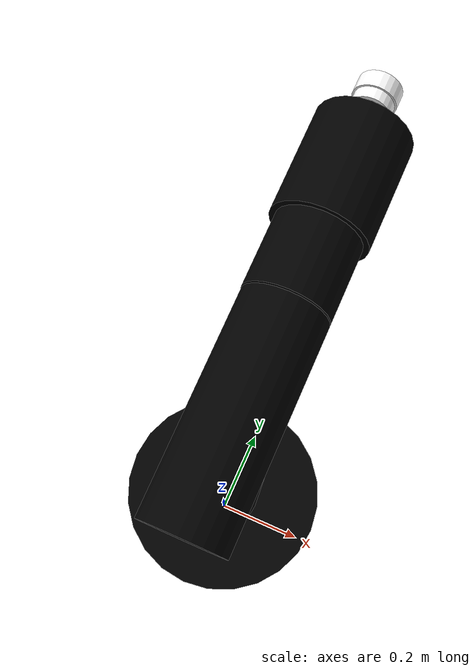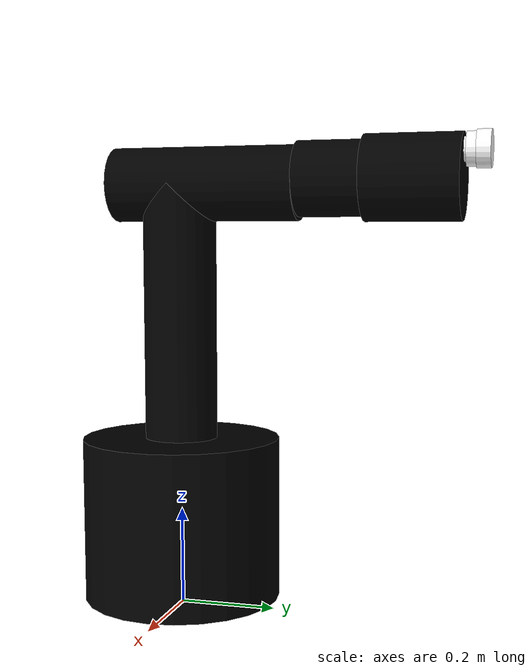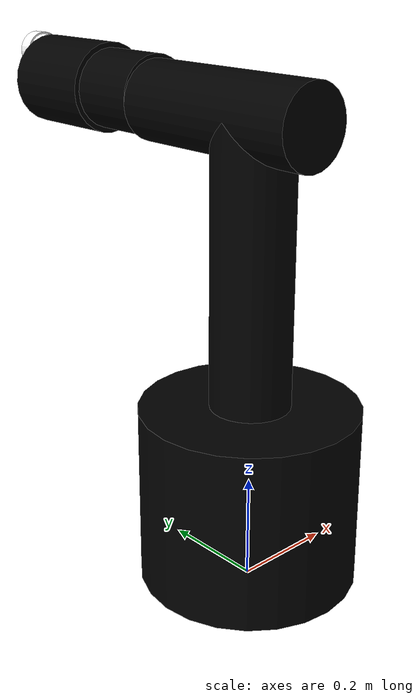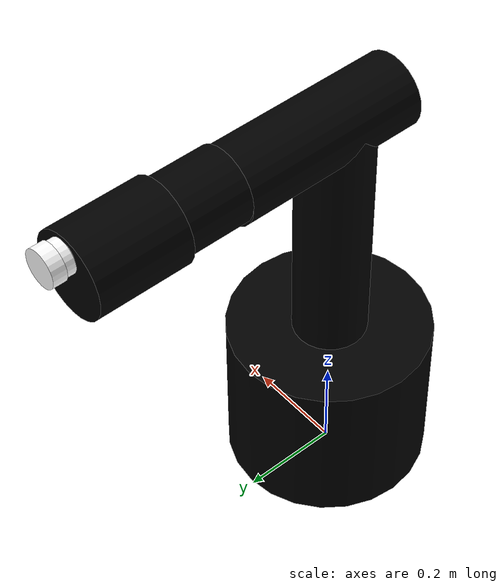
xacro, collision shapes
<?xml version="1.0"?>
<robot name="grips" xmlns:xacro="http://www.ros.org/wiki/xacro">

  <!-- Import common macros-->
  <xacro:include filename="$(find grips_description)/urdf/common.xacro" />
  <!-- Import materials for rviz-->
  <xacro:include filename="$(find grips_description)/urdf/materials.xacro" />
  <!-- Import robot without gripper -->
  <xacro:include filename="$(find grips_description)/urdf/serial_arm.xacro" />
  <!-- Import ft sensor -->
  <xacro:include filename="$(find grips_description)/urdf/ftsensor.xacro" />

  <!-- Create the grips robot -->
  <link name="world" />
  <serial_arm parent="world"/>

  <!-- Add the ft_sensor -->
  <ftsensor parent="end_effector"/>

  <!-- ros_control plugin  -->
  <gazebo>
    <plugin name="ros_control" filename="libgazebo_ros_control.so"/>
  </gazebo>

</robot>

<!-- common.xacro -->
<robot xmlns:xacro="http://www.ros.org/wiki/xacro">
  <!-- Auxiliar Values -->
  <property name="pi" value="3.1415926535897931" />
  <property name="gripper_effort" value="200" />
  <property name="gripper_velocity" value="15" />
  <property name="max_effort" value="400" />
  <property name="max_velocity" value="5" />

  <!-- Macros -->
  <macro name="cylinder_collision" params="radius length">
    <collision>
      <origin xyz="0 0 ${length/2}" rpy="0 0 0"/>
      <geometry>
        <cylinder radius="${radius}" length="${length}"/>
      </geometry>
    </collision>
  </macro>
  <macro name="cylinder_inertia" params="mass radius length">
    <inertial>
      <origin xyz="0 0 ${length/2}" rpy="0 0 0" />
      <mass value="${mass}" />
      <inertia  ixx="${mass*radius^2 / 4  + mass*length^2 / 12}" ixy="0.0"  ixz="0.0"
                iyy="${mass*radius^2 / 4  + mass*length^2 / 12}" iyz="0.0"
                izz="${mass*radius^2 / 2}" />
    </inertial>
  </macro>
  <!-- Link Macro -->
  <macro name="create_link" params="name color mesh *collision *inertia">
    <link name="${name}">
      <visual>
        <geometry>
          <mesh filename="${mesh}" />
        </geometry>
        <material name="${color}" />
      </visual>
      <xacro:insert_block name="collision" />
      <xacro:insert_block name="inertia" />
    </link>
  </macro>
  <!-- A smaller dummy link makes the model to explode in Gazebo -->
  <macro name="dummy_link" params="name">
    <link name="${name}">
      <visual>
        <geometry>
          <sphere radius="0.01"/>
        </geometry>
        <material name="blue" />
      </visual>
      <collision>
        <geometry>
          <sphere radius="0.01"/>
        </geometry>
      </collision>
      <cylinder_inertia radius="0.01" length="0.02" mass="0.05"/>
    </link>
  </macro>
  <!-- Transmission Macro -->
  <macro name="simple_transmission" params="joint">
    <transmission name="${joint}_tran" type="transmission_interface/SimpleTransmission">
      <type>transmission_interface/SimpleTransmission</type>
      <joint name="${joint}"/>
      <actuator name="${joint}_motor">
        <hardwareInterface>EffortJointInterface</hardwareInterface>
        <mechanicalReduction>1</mechanicalReduction>
      </actuator>
      <mechanicalReduction>1</mechanicalReduction>
    </transmission>
  </macro>
</robot>

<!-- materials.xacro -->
<robot>

  <material name="black">
    <color rgba="0.0 0.0 0.0 1.0" />
  </material>

  <material name="blue">
    <color rgba="0.0 0.0 0.8 1.0" />
  </material>

  <material name="green">
    <color rgba="0.0 0.8 0.0 1.0" />
  </material>

  <material name="grey">
    <color rgba="0.2 0.2 0.2 1.0" />
  </material>

  <material name="orange">
    <color rgba="${255/255} ${108/255} ${10/255} 1.0" />
  </material>

  <material name="brown">
    <color rgba="${222/255} ${207/255} ${195/255} 1.0" />
  </material>

  <material name="red">
    <color rgba="0.8 0.0 0.0 1.0" />
  </material>

  <material name="white">
    <color rgba="1.0 1.0 1.0 1.0" />
  </material>

  <material name="metal_seamed">
    <color rgba="0.4627450980392157 0.4666666666666667 0.4509803921568628 1.0" />
  </material>

</robot>

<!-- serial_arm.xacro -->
<robot xmlns:xacro="http://www.ros.org/wiki/xacro">
  <!-- Dimensions -->
  <property name="base_radius" value="0.125" />
  <property name="base_length" value="15.24e-3" />
  <property name="manifold_radius" value="0.205" />
  <property name="manifold_length" value="0.33812" />
  <property name="upper_arm_radius" value="0.075" />
  <property name="upper_arm_length" value="0.52167" />
  <property name="forearm_radius" value="0.075" />
  <property name="forearm_length" value="0.385078" />
  <property name="pitch_radius" value="0.075" />
  <property name="pitch_length" value="0.133223" />
  <property name="yaw_radius" value="0.085" />
  <property name="yaw_length" value="0.190892" />
  <!-- Link Masses -->
  <property name="base_mass" value="1.208" />
  <property name="manifold_mass" value="41.111" />
  <property name="upper_arm_mass" value="3.592" />
  <property name="elbow_pivot_mass" value="0.72" />
  <property name="coupling_mass" value="0.446" />
  <property name="forearm_mass" value="4.935" />
  <property name="pitch_mass" value="0.679" />
  <property name="yaw_mass" value="4.689" />
  <property name="camera_mass" value="0.869" />
  <!-- Meshes -->
  <property name="base_mesh" value="package://grips_description/meshes/visual/base.dae" />
  <property name="manifold_mesh" value="package://grips_description/meshes/visual/manifold.dae" />
  <property name="upper_arm_mesh" value="package://grips_description/meshes/visual/upper_arm.dae" />
  <property name="elbow_pivot_mesh" value="package://grips_description/meshes/visual/elbow_pivot.dae" />
  <property name="coupling_mesh" value="package://grips_description/meshes/visual/coupling.dae" />
  <property name="forearm_mesh" value="package://grips_description/meshes/visual/forearm.dae" />
  <property name="pitch_mesh" value="package://grips_description/meshes/visual/pitch.dae" />
  <property name="yaw_mesh" value="package://grips_description/meshes/visual/yaw.dae" />
  <property name="camera_mesh" value="package://grips_description/meshes/visual/camera.dae" />
  <!-- Joints Dynamics -->
  <property name="SA_damping" value="5" />
  <property name="SE_damping" value="5" />
  <property name="linkage_damping" value="0.5" />
  <property name="linkage_friction" value="0.5" />
  <property name="WP_damping" value="5" />
  <property name="WY_damping" value="5" />
  <property name="WR_damping" value="0.5" />

  <macro name="serial_arm" params="parent">
    <create_link name="base_link" color="black" mesh="${base_mesh}" >
      <cylinder_collision radius="${base_radius}" length="${base_length}" />
      <cylinder_inertia radius="${base_radius}" length="${base_length}" mass="${base_mass}"/>
    </create_link>

    <create_link name="manifold" color="black" mesh="${manifold_mesh}" >
      <cylinder_collision radius="${manifold_radius}" length="${manifold_length}" />
      <cylinder_inertia radius="${manifold_radius}" length="${manifold_length}" mass="${manifold_mass}"/>
    </create_link>

    <create_link name="upper_arm" color="black" mesh="${upper_arm_mesh}" >
      <cylinder_collision radius="${upper_arm_radius}" length="${upper_arm_length}" />
      <cylinder_inertia radius="${upper_arm_radius}" length="${upper_arm_length}" mass="${upper_arm_mass}"/>
    </create_link>

    <create_link name="forearm" color="black" mesh="${forearm_mesh}" >
      <collision>
        <origin xyz="0 ${forearm_length/2 - 0.1234} 0" rpy="${pi/2} 0 0"/>
        <geometry>
          <cylinder radius="${forearm_radius}" length="${forearm_length}"/>
        </geometry>
      </collision>
      <inertial>
        <origin xyz="0 ${forearm_length/2 - 0.1234} 0" rpy="0 0 0"/>
        <mass value="${forearm_mass}" />
        <inertia  ixx="${forearm_mass*forearm_radius^2 / 4  + forearm_mass*forearm_length^2 / 12}" ixy="0.0"  ixz="0.0"
                  iyy="${forearm_mass*forearm_radius^2 / 2}" iyz="0.0"
                  izz="${forearm_mass*forearm_radius^2 / 4  + forearm_mass*forearm_length^2 / 12}" />
      </inertial>
    </create_link>
    <create_link name="pitch" color="black" mesh="${pitch_mesh}" >
      <collision>
        <origin xyz="0 ${pitch_length/2} 0" rpy="${pi/2} 0 0"/>
        <geometry>
          <cylinder radius="${pitch_radius}" length="${pitch_length}"/>
        </geometry>
      </collision>
      <inertial>
        <origin xyz="0 ${pitch_length/2} 0" rpy="0 0 0"/>
        <mass value="${pitch_mass}" />
        <inertia  ixx="${pitch_mass*pitch_radius^2 / 4  + pitch_mass*pitch_length^2 / 12}" ixy="0.0"  ixz="0.0"
                  iyy="${pitch_mass*pitch_radius^2 / 2}" iyz="0.0"
                  izz="${pitch_mass*pitch_radius^2 / 4  + pitch_mass*pitch_length^2 / 12}" />
      </inertial>
    </create_link>
    <create_link name="yaw" color="black" mesh="${yaw_mesh}" >
      <collision>
        <origin xyz="0 ${yaw_length/2} 0" rpy="${pi/2} 0 0"/>
        <geometry>
          <cylinder radius="${yaw_radius}" length="${yaw_length}"/>
        </geometry>
      </collision>
      <inertial>
        <origin xyz="0 ${yaw_length/2} 0" rpy="0 0 0"/>
        <mass value="${yaw_mass}" />
        <inertia  ixx="${yaw_mass*yaw_radius^2 / 4  + yaw_mass*yaw_length^2 / 12}" ixy="0.0"  ixz="0.0"
                  iyy="${yaw_mass*yaw_radius^2 / 2}" iyz="0.0"
                  izz="${yaw_mass*yaw_radius^2 / 4  + yaw_mass*yaw_length^2 / 12}" />
      </inertial>
    </create_link>

    <!-- This dummy link is needed for coupling hands to the robot -->
    <dummy_link name="end_effector" />

    <!-- Joints -->
    <joint name="anchor" type="fixed">
      <origin xyz="0 0 0.001" rpy="0 0 0" />
      <parent link="${parent}" />
      <child link="base_link" />
    </joint>
    <joint name="SA" type="revolute">
      <child link="manifold" />
      <parent link="base_link" />
      <axis xyz="0 0 1" />
      <origin xyz="0 0 ${base_length}" rpy="0 0 0" />
      <limit lower="${-pi/2}" upper="${pi/2}" effort="${max_effort}" velocity="${80*pi/180}" />
      <dynamics damping="${SA_damping}"/>
    </joint>
    <joint name="SE" type="revolute">
      <child link="upper_arm" />
      <parent link="manifold" />
      <axis xyz="1 0 0" />
      <origin xyz="0 0 ${manifold_length}" rpy="0 0 0" />
      <limit lower="${-pi/2}" upper="${pi/6}" effort="${max_effort}" velocity="${65*pi/180}" />
      <dynamics damping="${SE_damping}" friction="10"/>
    </joint>
    <joint name="linkage_tr" type="revolute">
      <child link="forearm" />
      <parent link="upper_arm" />
      <axis xyz="1 0 0" />
      <origin xyz="0 -9.82e-3 ${upper_arm_length}" rpy="0 0 0" />
      <limit lower="${-40*pi/180}" upper="${70*pi/180}" effort="${max_effort}" velocity="${50*pi/180}" />
      <dynamics damping="10"/>
    </joint>
    <joint name="WP" type="revolute">
      <child link="pitch" />
      <parent link="forearm" />
      <axis xyz="1 0 0" />
      <origin xyz="0 0.26109 7.5e-3" rpy="0 0 0" />
      <limit lower="${-35*pi/180}" upper="${65*pi/180}" effort="${max_effort}" velocity="${100*pi/180}" />
      <dynamics damping="${WP_damping}"/>
    </joint>
    <joint name="WY" type="revolute">
      <child link="yaw" />
      <parent link="pitch" />
      <axis xyz="0 0 1" />
      <origin xyz="0 ${pitch_length} 0" rpy="0 0 0" />
      <limit lower="${-39*pi/180}" upper="${66*pi/180}" effort="${max_effort}" velocity="${115*pi/180}" />
      <dynamics damping="${WY_damping}"/>
    </joint>
    <joint name="WR" type="continuous">
      <child link="end_effector" />
      <parent link="yaw" />
      <axis xyz="0 1 0" />
      <origin xyz="-0.787e-3 ${yaw_length} 0.051331" rpy="0 0 0" />
      <limit lower="${-100*pi/180}" upper="${100*pi/180}" effort="${max_effort}" velocity="${200*pi/180}" />
      <dynamics damping="${WR_damping}"/>
    </joint>

    <!-- Transmissions -->
    <simple_transmission joint="SA" />
    <simple_transmission joint="SE" />
    <simple_transmission joint="linkage_tr" />
    <simple_transmission joint="WP" />
    <simple_transmission joint="WY" />
    <simple_transmission joint="WR" />

    <gazebo reference="base_link">
      <material>Telerobcar/MetalSeamed</material>
      <selfCollide>false</selfCollide>
    </gazebo>
    <gazebo reference="manifold">
      <material>Telerobcar/MetalSeamed</material>
      <selfCollide>false</selfCollide>
    </gazebo>
    <gazebo reference="upper_arm">
      <material>Telerobcar/MetalSeamed</material>
      <selfCollide>false</selfCollide>
    </gazebo>
    <gazebo reference="forearm">
      <material>Telerobcar/MetalSeamed</material>
      <selfCollide>false</selfCollide>
    </gazebo>
    <gazebo reference="pitch">
      <material>Telerobcar/MetalSeamed</material>
      <selfCollide>false</selfCollide>
    </gazebo>
    <gazebo reference="yaw">
      <material>Telerobcar/MetalSeamed</material>
      <selfCollide>false</selfCollide>
    </gazebo>
    <gazebo reference="end_effector">
      <selfCollide>false</selfCollide>
    </gazebo>
  </macro>
</robot>

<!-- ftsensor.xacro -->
<robot xmlns:xacro="http://www.ros.org/wiki/xacro">
  <!-- Meshes -->
  <property name="wrist_coupling_mesh"   value="package://grips_description/meshes/visual/wrist_coupling.dae" />
  <property name="ft_coupling_mesh"   value="package://grips_description/meshes/visual/ft_coupling.dae" />
  <property name="ft_sensor_mesh"        value="package://grips_description/meshes/visual/ft_sensor.dae" />
  <property name="robotiq_coupling_mesh" value="package://grips_description/meshes/visual/robotiq_coupling.dae" />
  <!-- Dimensions -->
  <property name="wrist_coupling_radius" value="23.8e-3" />
  <property name="wrist_coupling_length" value="19e-3" />
  <property name="ft_coupling_radius" value="33.7e-3" />
  <property name="ft_coupling_length" value="19e-3" />
  <property name="ft_sensor_radius" value="37e-3" />
  <property name="ft_sensor_length" value="28e-3" />
  <!-- Links Mass -->
  <property name="wrist_coupling_mass"    value="0.059" />    <!-- Density: 5000 kg/m3 -->
  <property name="ft_coupling_mass"    value="0.1478" />   <!-- Density: 4070 kg/m3 -->
  <property name="ft_sensor_mass"         value="0.2396" />   <!-- Density: 1750 kg/m3 -->

  <property name="robotiq_coupling_mass"  value="0.2304" />   <!-- Density: 4440 kg/m3 -->
  <property name="robotiq_mass"           value="2.438" />

  <macro name="ftsensor" params="parent">
    <!-- Links -->
    <create_link name="wrist_coupling" color="white" mesh="${wrist_coupling_mesh}" >
      <cylinder_collision radius="${wrist_coupling_radius}" length="${wrist_coupling_length}" />
      <cylinder_inertia radius="${wrist_coupling_radius}" length="${wrist_coupling_length}" mass="${wrist_coupling_mass}"/>
    </create_link>

    <link name="ft_coupling">
      <visual>
        <geometry>
          <mesh filename="${ft_coupling_mesh}" />
        </geometry>
        <material name="white" />
      </visual>
      <!-- Align the collision with the mess. It has an offset of 4.7 mm -->
      <collision>
        <origin xyz="0 0 ${4.7e-3 + ft_coupling_length/2}" rpy="0 0 0"/>
        <geometry>
          <cylinder radius="${ft_coupling_radius}" length="${ft_coupling_length}"/>
        </geometry>
      </collision>
      <inertial>
        <origin xyz="0 0 ${4.7e-3 + ft_coupling_length/2}" rpy="0 0 0" />
        <mass value="${ft_coupling_mass}" />
        <inertia  ixx="${ft_coupling_mass*ft_coupling_radius^2 / 4  + ft_coupling_mass*ft_coupling_length^2 / 12}" ixy="0.0"  ixz="0.0"
                  iyy="${ft_coupling_mass*ft_coupling_radius^2 / 4  + ft_coupling_mass*ft_coupling_length^2 / 12}" iyz="0.0"
                  izz="${ft_coupling_mass*ft_coupling_radius^2 / 2}" />
      </inertial>
    </link>

    <link name="ft_sensor">
      <visual>
        <origin xyz="0 0 0" rpy="${-pi/2} 0 0"/>
        <geometry>
          <mesh filename="${ft_sensor_mesh}" />
        </geometry>
        <material name="white" />
      </visual>
      <collision>
        <origin xyz="0 0 ${-ft_sensor_length/2}" rpy="0 0 0"/>
        <geometry>
          <cylinder radius="${ft_sensor_radius}" length="${ft_sensor_length}"/>
        </geometry>
      </collision>
      <inertial>
        <origin xyz="0 0 ${-ft_sensor_length/2}" rpy="0 0 0" />
        <mass value="${ft_sensor_mass}" />
        <inertia  ixx="${ft_sensor_mass*ft_sensor_radius^2 / 4  + ft_sensor_mass*ft_sensor_length^2 / 12}" ixy="0.0"  ixz="0.0"
                  iyy="${ft_sensor_mass*ft_sensor_radius^2 / 4  + ft_sensor_mass*ft_sensor_length^2 / 12}" iyz="0.0"
                  izz="${ft_sensor_mass*ft_sensor_radius^2 / 2}" />
      </inertial>
    </link>

    <!-- Joints -->
    <joint name="ft_robot_joint" type="fixed">
      <origin xyz="0 0 0" rpy="${-pi/2} 0 0" />
      <parent link="${parent}" />
      <child link="wrist_coupling" />
    </joint>

    <joint name="ft_wrist_joint" type="fixed">
      <origin xyz="0 0 0" rpy="0 0 0" />
      <parent link="wrist_coupling" />
      <child link="ft_coupling" />
    </joint>

    <joint name="ft_sensor_joint" type="fixed">
      <origin xyz="0 0 ${4.7e-3 + ft_coupling_length + ft_sensor_length}" rpy="0 0 0" />
      <parent link="ft_coupling" />
      <child link="ft_sensor" />
    </joint>

  </macro>
</robot>
